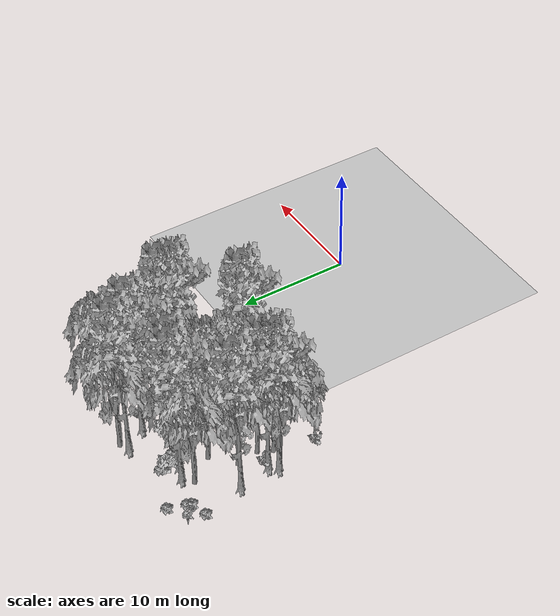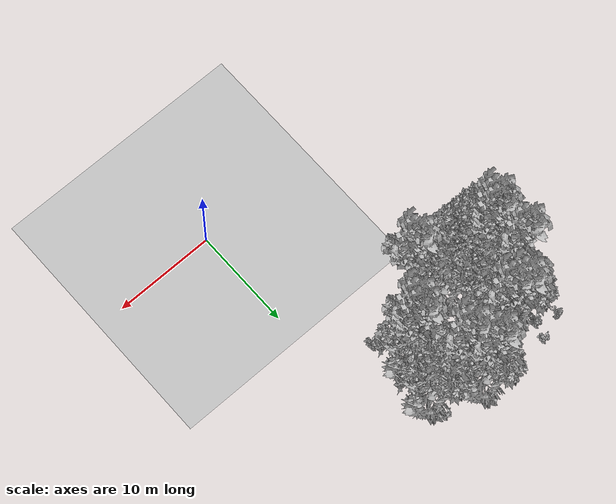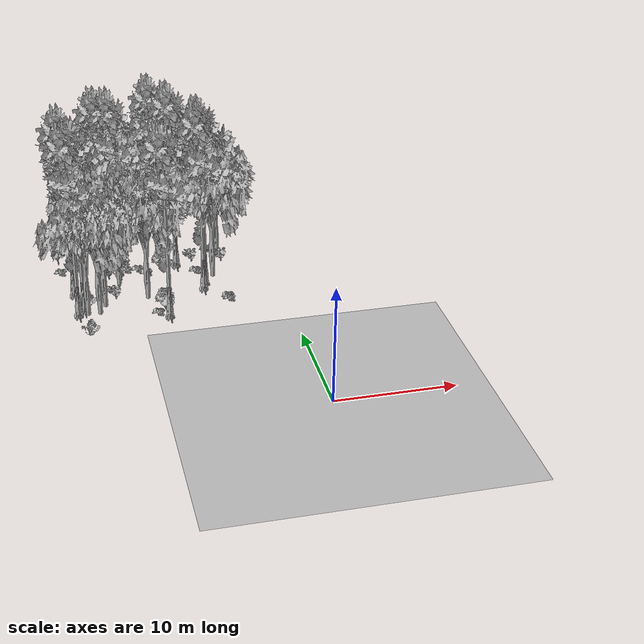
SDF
<sdf version="1.7">
 <world name="default">
  <model name="ground_plane">
   <static>1</static>
   <link name="link">
    <collision name="collision">
     <pose>-50 0 0 0 -0 0</pose>
     <geometry><plane><normal>0 0 1</normal><size>80 80</size></plane></geometry>
     <surface><contact><ode><min_depth>0.01</min_depth><max_vel>0</max_vel></ode></contact></surface>
    </collision>
    <visual name="grass">
     <cast_shadows>0</cast_shadows>
     <geometry>
      <mesh>
       <scale>0.46714285714285714 0.46714285714285714 0.1</scale>
       <uri>file://grass_plane/meshes/grass_plane.dae</uri>
      </mesh>
     </geometry>
    </visual>
   </link>
  </model>
  <model name="Tree 15">
   <static>1</static>
   <pose>-8.292715532854295 24.661213749309667 0 1.57079 -0 0</pose>
   <link name="link">
    <collision name="collision">
     <geometry><mesh><scale>3.5 5 3.5</scale><uri>model://tree_9/meshes/tree_9.obj</uri></mesh></geometry>
    </collision>
    <visual name="visual">
     <geometry><mesh><scale>3.5 5 3.5</scale><uri>model://tree_9/meshes/tree_9.obj</uri></mesh></geometry>
    </visual>
   </link>
  </model>
  <model name="Tree 109">
   <static>1</static>
   <pose>-6.550830692760805 19.89360490231479 0 1.57079 -0 0</pose>
   <link name="link">
    <collision name="collision">
     <geometry><mesh><scale>3.5 5 3.5</scale><uri>model://tree_9/meshes/tree_9.obj</uri></mesh></geometry>
    </collision>
    <visual name="visual">
     <geometry><mesh><scale>3.5 5 3.5</scale><uri>model://tree_9/meshes/tree_9.obj</uri></mesh></geometry>
    </visual>
   </link>
  </model>
  <model name="Tree 110">
   <static>1</static>
   <pose>-17.126012770613343 17.023054667490698 0 1.57079 -0 0</pose>
   <link name="link">
    <collision name="collision">
     <geometry><mesh><scale>3.5 5 3.5</scale><uri>model://tree_2/meshes/tree_2.obj</uri></mesh></geometry>
    </collision>
    <visual name="visual">
     <geometry><mesh><scale>3.5 5 3.5</scale><uri>model://tree_2/meshes/tree_2.obj</uri></mesh></geometry>
    </visual>
   </link>
  </model>
  <model name="Tree 140">
   <static>1</static>
   <pose>-13.554730115266054 24.142331529413667 0 1.57079 -0 0</pose>
   <link name="link">
    <collision name="collision">
     <geometry><mesh><scale>3.5 5 3.5</scale><uri>model://tree_9/meshes/tree_9.obj</uri></mesh></geometry>
    </collision>
    <visual name="visual">
     <geometry><mesh><scale>3.5 5 3.5</scale><uri>model://tree_9/meshes/tree_9.obj</uri></mesh></geometry>
    </visual>
   </link>
  </model>
  <model name="Tree 143">
   <static>1</static>
   <pose>-10.212726416079686 15.782468185717207 0 1.57079 -0 0</pose>
   <link name="link">
    <collision name="collision">
     <geometry><mesh><scale>3.5 5 3.5</scale><uri>model://tree_9/meshes/tree_9.obj</uri></mesh></geometry>
    </collision>
    <visual name="visual">
     <geometry><mesh><scale>3.5 5 3.5</scale><uri>model://tree_9/meshes/tree_9.obj</uri></mesh></geometry>
    </visual>
   </link>
  </model>
  <model name="Tree 144">
   <static>1</static>
   <pose>-14.624975446077059 24.576041392068035 0 1.57079 -0 0</pose>
   <link name="link">
    <collision name="collision">
     <geometry><mesh><scale>3.5 5 3.5</scale><uri>model://tree_9/meshes/tree_9.obj</uri></mesh></geometry>
    </collision>
    <visual name="visual">
     <geometry><mesh><scale>3.5 5 3.5</scale><uri>model://tree_9/meshes/tree_9.obj</uri></mesh></geometry>
    </visual>
   </link>
  </model>
  <model name="Tree 209">
   <static>1</static>
   <pose>-9.653871599289953 26.584820122343316 0 1.57079 -0 0</pose>
   <link name="link">
    <collision name="collision">
     <geometry><mesh><scale>3.5 5 3.5</scale><uri>model://tree_9/meshes/tree_9.obj</uri></mesh></geometry>
    </collision>
    <visual name="visual">
     <geometry><mesh><scale>3.5 5 3.5</scale><uri>model://tree_9/meshes/tree_9.obj</uri></mesh></geometry>
    </visual>
   </link>
  </model>
  <model name="Tree 241">
   <static>1</static>
   <pose>-6.267327057480081 20.74024753474704 0 1.57079 -0 0</pose>
   <link name="link">
    <collision name="collision">
     <geometry><mesh><scale>3.5 5 3.5</scale><uri>model://tree_9/meshes/tree_9.obj</uri></mesh></geometry>
    </collision>
    <visual name="visual">
     <geometry><mesh><scale>3.5 5 3.5</scale><uri>model://tree_9/meshes/tree_9.obj</uri></mesh></geometry>
    </visual>
   </link>
  </model>
  <model name="Tree 269">
   <static>1</static>
   <pose>-11.763452044475557 18.74192902436748 0 1.57079 -0 0</pose>
   <link name="link">
    <collision name="collision">
     <geometry><mesh><scale>3.5 5 3.5</scale><uri>model://tree_2/meshes/tree_2.obj</uri></mesh></geometry>
    </collision>
    <visual name="visual">
     <geometry><mesh><scale>3.5 5 3.5</scale><uri>model://tree_2/meshes/tree_2.obj</uri></mesh></geometry>
    </visual>
   </link>
  </model>
  <model name="Tree 325">
   <static>1</static>
   <pose>-5.541952828704893 21.414962444839823 0 1.57079 -0 0</pose>
   <link name="link">
    <collision name="collision">
     <geometry><mesh><scale>3.5 5 3.5</scale><uri>model://tree_2/meshes/tree_2.obj</uri></mesh></geometry>
    </collision>
    <visual name="visual">
     <geometry><mesh><scale>3.5 5 3.5</scale><uri>model://tree_2/meshes/tree_2.obj</uri></mesh></geometry>
    </visual>
   </link>
  </model>
  <model name="Tree 333">
   <static>1</static>
   <pose>-17.91380853144903 21.139049416569407 0 1.57079 -0 0</pose>
   <link name="link">
    <collision name="collision">
     <geometry><mesh><scale>3.5 5 3.5</scale><uri>model://tree_9/meshes/tree_9.obj</uri></mesh></geometry>
    </collision>
    <visual name="visual">
     <geometry><mesh><scale>3.5 5 3.5</scale><uri>model://tree_9/meshes/tree_9.obj</uri></mesh></geometry>
    </visual>
   </link>
  </model>
  <model name="Tree 339">
   <static>1</static>
   <pose>-15.801614452808987 20.040853027054347 0 1.57079 -0 0</pose>
   <link name="link">
    <collision name="collision">
     <geometry><mesh><scale>3.5 5 3.5</scale><uri>model://tree_2/meshes/tree_2.obj</uri></mesh></geometry>
    </collision>
    <visual name="visual">
     <geometry><mesh><scale>3.5 5 3.5</scale><uri>model://tree_2/meshes/tree_2.obj</uri></mesh></geometry>
    </visual>
   </link>
  </model>
  <model name="Tree 392">
   <static>1</static>
   <pose>-4.557685112494681 24.96248180956384 0 1.57079 -0 0</pose>
   <link name="link">
    <collision name="collision">
     <geometry><mesh><scale>3.5 5 3.5</scale><uri>model://tree_2/meshes/tree_2.obj</uri></mesh></geometry>
    </collision>
    <visual name="visual">
     <geometry><mesh><scale>3.5 5 3.5</scale><uri>model://tree_2/meshes/tree_2.obj</uri></mesh></geometry>
    </visual>
   </link>
  </model>
  <model name="Tree 420">
   <static>1</static>
   <pose>-15.603673739921529 23.887566090268713 0 1.57079 -0 0</pose>
   <link name="link">
    <collision name="collision">
     <geometry><mesh><scale>3.5 5 3.5</scale><uri>model://tree_2/meshes/tree_2.obj</uri></mesh></geometry>
    </collision>
    <visual name="visual">
     <geometry><mesh><scale>3.5 5 3.5</scale><uri>model://tree_2/meshes/tree_2.obj</uri></mesh></geometry>
    </visual>
   </link>
  </model>
  <model name="Tree 475">
   <static>1</static>
   <pose>-15.536670682869985 18.124727395134215 0 1.57079 -0 0</pose>
   <link name="link">
    <collision name="collision">
     <geometry><mesh><scale>3.5 5 3.5</scale><uri>model://tree_2/meshes/tree_2.obj</uri></mesh></geometry>
    </collision>
    <visual name="visual">
     <geometry><mesh><scale>3.5 5 3.5</scale><uri>model://tree_2/meshes/tree_2.obj</uri></mesh></geometry>
    </visual>
   </link>
  </model>
  <model name="Tree 492">
   <static>1</static>
   <pose>-16.11060564327417 16.95325655098054 0 1.57079 -0 0</pose>
   <link name="link">
    <collision name="collision">
     <geometry><mesh><scale>3.5 5 3.5</scale><uri>model://tree_2/meshes/tree_2.obj</uri></mesh></geometry>
    </collision>
    <visual name="visual">
     <geometry><mesh><scale>3.5 5 3.5</scale><uri>model://tree_2/meshes/tree_2.obj</uri></mesh></geometry>
    </visual>
   </link>
  </model>
  <model name="Tree 537">
   <static>1</static>
   <pose>-8.99832951207204 26.98607690563385 0 1.57079 -0 0</pose>
   <link name="link">
    <collision name="collision">
     <geometry><mesh><scale>3.5 5 3.5</scale><uri>model://tree_2/meshes/tree_2.obj</uri></mesh></geometry>
    </collision>
    <visual name="visual">
     <geometry><mesh><scale>3.5 5 3.5</scale><uri>model://tree_2/meshes/tree_2.obj</uri></mesh></geometry>
    </visual>
   </link>
  </model>
  <model name="Tree 561">
   <static>1</static>
   <pose>-13.93694100472192 21.71370582622295 0 1.57079 -0 0</pose>
   <link name="link">
    <collision name="collision">
     <geometry><mesh><scale>3.5 5 3.5</scale><uri>model://tree_2/meshes/tree_2.obj</uri></mesh></geometry>
    </collision>
    <visual name="visual">
     <geometry><mesh><scale>3.5 5 3.5</scale><uri>model://tree_2/meshes/tree_2.obj</uri></mesh></geometry>
    </visual>
   </link>
  </model>
  <model name="Tree 574">
   <static>1</static>
   <pose>-17.30329897056695 18.240573681545165 0 1.57079 -0 0</pose>
   <link name="link">
    <collision name="collision">
     <geometry><mesh><scale>3.5 5 3.5</scale><uri>model://tree_9/meshes/tree_9.obj</uri></mesh></geometry>
    </collision>
    <visual name="visual">
     <geometry><mesh><scale>3.5 5 3.5</scale><uri>model://tree_9/meshes/tree_9.obj</uri></mesh></geometry>
    </visual>
   </link>
  </model>
  <model name="Tree 625">
   <static>1</static>
   <pose>-17.844764542287244 17.59301895564613 0 1.57079 -0 0</pose>
   <link name="link">
    <collision name="collision">
     <geometry><mesh><scale>3.5 5 3.5</scale><uri>model://tree_9/meshes/tree_9.obj</uri></mesh></geometry>
    </collision>
    <visual name="visual">
     <geometry><mesh><scale>3.5 5 3.5</scale><uri>model://tree_9/meshes/tree_9.obj</uri></mesh></geometry>
    </visual>
   </link>
  </model>
  <model name="Bush 56">
   <static>1</static>
   <pose>-10.45311648723494 16.46314151840628 0 1.57079 -0 0</pose>
   <link name="link">
    <collision name="collision">
     <geometry><mesh><scale>2 2 2</scale><uri>model://bush_1/meshes/bush_1.obj</uri></mesh></geometry>
     <surface><contact><collide_without_contact>false</collide_without_contact></contact></surface>
    </collision>
    <visual name="visual">
     <geometry><mesh><scale>2 2 2</scale><uri>model://bush_1/meshes/bush_1.obj</uri></mesh></geometry>
    </visual>
   </link>
  </model>
  <model name="Bush 110">
   <static>1</static>
   <pose>-5.250466016496787 26.44896665482176 0 1.57079 -0 0</pose>
   <link name="link">
    <collision name="collision">
     <geometry><mesh><scale>2 2 2</scale><uri>model://bush_2/meshes/bush_2.obj</uri></mesh></geometry>
     <surface><contact><collide_without_contact>false</collide_without_contact></contact></surface>
    </collision>
    <visual name="visual">
     <geometry><mesh><scale>2 2 2</scale><uri>model://bush_2/meshes/bush_2.obj</uri></mesh></geometry>
    </visual>
   </link>
  </model>
  <model name="Bush 114">
   <static>1</static>
   <pose>-4.769407034909683 17.091894299656758 0 1.57079 -0 0</pose>
   <link name="link">
    <collision name="collision">
     <geometry><mesh><scale>2 2 2</scale><uri>model://bush_2/meshes/bush_2.obj</uri></mesh></geometry>
     <surface><contact><collide_without_contact>false</collide_without_contact></contact></surface>
    </collision>
    <visual name="visual">
     <geometry><mesh><scale>2 2 2</scale><uri>model://bush_2/meshes/bush_2.obj</uri></mesh></geometry>
    </visual>
   </link>
  </model>
  <model name="Bush 132">
   <static>1</static>
   <pose>-17.34318724251351 25.151773113928385 0 1.57079 -0 0</pose>
   <link name="link">
    <collision name="collision">
     <geometry><mesh><scale>2 2 2</scale><uri>model://bush_2/meshes/bush_2.obj</uri></mesh></geometry>
     <surface><contact><collide_without_contact>false</collide_without_contact></contact></surface>
    </collision>
    <visual name="visual">
     <geometry><mesh><scale>2 2 2</scale><uri>model://bush_2/meshes/bush_2.obj</uri></mesh></geometry>
    </visual>
   </link>
  </model>
  <model name="Bush 139">
   <static>1</static>
   <pose>-9.810401265471661 23.386548524037153 0 1.57079 -0 0</pose>
   <link name="link">
    <collision name="collision">
     <geometry><mesh><scale>2 2 2</scale><uri>model://bush_1/meshes/bush_1.obj</uri></mesh></geometry>
     <surface><contact><collide_without_contact>false</collide_without_contact></contact></surface>
    </collision>
    <visual name="visual">
     <geometry><mesh><scale>2 2 2</scale><uri>model://bush_1/meshes/bush_1.obj</uri></mesh></geometry>
    </visual>
   </link>
  </model>
  <model name="Bush 201">
   <static>1</static>
   <pose>-4.819874008255255 17.477037897902754 0 1.57079 -0 0</pose>
   <link name="link">
    <collision name="collision">
     <geometry><mesh><scale>2 2 2</scale><uri>model://bush_2/meshes/bush_2.obj</uri></mesh></geometry>
     <surface><contact><collide_without_contact>false</collide_without_contact></contact></surface>
    </collision>
    <visual name="visual">
     <geometry><mesh><scale>2 2 2</scale><uri>model://bush_2/meshes/bush_2.obj</uri></mesh></geometry>
    </visual>
   </link>
  </model>
  <model name="Bush 208">
   <static>1</static>
   <pose>-6.863589050270065 22.611940298627864 0 1.57079 -0 0</pose>
   <link name="link">
    <collision name="collision">
     <geometry><mesh><scale>2 2 2</scale><uri>model://bush_2/meshes/bush_2.obj</uri></mesh></geometry>
     <surface><contact><collide_without_contact>false</collide_without_contact></contact></surface>
    </collision>
    <visual name="visual">
     <geometry><mesh><scale>2 2 2</scale><uri>model://bush_2/meshes/bush_2.obj</uri></mesh></geometry>
    </visual>
   </link>
  </model>
  <model name="Bush 276">
   <static>1</static>
   <pose>-13.553777915610826 24.23097641397176 0 1.57079 -0 0</pose>
   <link name="link">
    <collision name="collision">
     <geometry><mesh><scale>2 2 2</scale><uri>model://bush_5/meshes/bush_5.obj</uri></mesh></geometry>
     <surface><contact><collide_without_contact>false</collide_without_contact></contact></surface>
    </collision>
    <visual name="visual">
     <geometry><mesh><scale>2 2 2</scale><uri>model://bush_5/meshes/bush_5.obj</uri></mesh></geometry>
    </visual>
   </link>
  </model>
  <model name="Bush 285">
   <static>1</static>
   <pose>-14.429352782253009 19.174948931297365 0 1.57079 -0 0</pose>
   <link name="link">
    <collision name="collision">
     <geometry><mesh><scale>2 2 2</scale><uri>model://bush_0/meshes/bush_0.obj</uri></mesh></geometry>
     <surface><contact><collide_without_contact>false</collide_without_contact></contact></surface>
    </collision>
    <visual name="visual">
     <geometry><mesh><scale>2 2 2</scale><uri>model://bush_0/meshes/bush_0.obj</uri></mesh></geometry>
    </visual>
   </link>
  </model>
  <model name="Bush 287">
   <static>1</static>
   <pose>-18.832573151570323 26.404877636828047 0 1.57079 -0 0</pose>
   <link name="link">
    <collision name="collision">
     <geometry><mesh><scale>2 2 2</scale><uri>model://bush_5/meshes/bush_5.obj</uri></mesh></geometry>
     <surface><contact><collide_without_contact>false</collide_without_contact></contact></surface>
    </collision>
    <visual name="visual">
     <geometry><mesh><scale>2 2 2</scale><uri>model://bush_5/meshes/bush_5.obj</uri></mesh></geometry>
    </visual>
   </link>
  </model>
  <model name="Bush 295">
   <static>1</static>
   <pose>-17.159869461648885 13.669016456538401 0 1.57079 -0 0</pose>
   <link name="link">
    <collision name="collision">
     <geometry><mesh><scale>2 2 2</scale><uri>model://bush_4/meshes/bush_4.obj</uri></mesh></geometry>
     <surface><contact><collide_without_contact>false</collide_without_contact></contact></surface>
    </collision>
    <visual name="visual">
     <geometry><mesh><scale>2 2 2</scale><uri>model://bush_4/meshes/bush_4.obj</uri></mesh></geometry>
    </visual>
   </link>
  </model>
  <model name="Bush 309">
   <static>1</static>
   <pose>-16.710891992001798 27.003185246464824 0 1.57079 -0 0</pose>
   <link name="link">
    <collision name="collision">
     <geometry><mesh><scale>2 2 2</scale><uri>model://bush_2/meshes/bush_2.obj</uri></mesh></geometry>
     <surface><contact><collide_without_contact>false</collide_without_contact></contact></surface>
    </collision>
    <visual name="visual">
     <geometry><mesh><scale>2 2 2</scale><uri>model://bush_2/meshes/bush_2.obj</uri></mesh></geometry>
    </visual>
   </link>
  </model>
  <model name="Bush 333">
   <static>1</static>
   <pose>-11.157487376684116 15.991143916208436 0 1.57079 -0 0</pose>
   <link name="link">
    <collision name="collision">
     <geometry><mesh><scale>2 2 2</scale><uri>model://bush_2/meshes/bush_2.obj</uri></mesh></geometry>
     <surface><contact><collide_without_contact>false</collide_without_contact></contact></surface>
    </collision>
    <visual name="visual">
     <geometry><mesh><scale>2 2 2</scale><uri>model://bush_2/meshes/bush_2.obj</uri></mesh></geometry>
    </visual>
   </link>
  </model>
  <model name="Bush 359">
   <static>1</static>
   <pose>-18.805905551720468 24.738410259780053 0 1.57079 -0 0</pose>
   <link name="link">
    <collision name="collision">
     <geometry><mesh><scale>2 2 2</scale><uri>model://bush_2/meshes/bush_2.obj</uri></mesh></geometry>
     <surface><contact><collide_without_contact>false</collide_without_contact></contact></surface>
    </collision>
    <visual name="visual">
     <geometry><mesh><scale>2 2 2</scale><uri>model://bush_2/meshes/bush_2.obj</uri></mesh></geometry>
    </visual>
   </link>
  </model>
  <model name="Bush 365">
   <static>1</static>
   <pose>-12.975958958570196 25.54135009341492 0 1.57079 -0 0</pose>
   <link name="link">
    <collision name="collision">
     <geometry><mesh><scale>2 2 2</scale><uri>model://bush_2/meshes/bush_2.obj</uri></mesh></geometry>
     <surface><contact><collide_without_contact>false</collide_without_contact></contact></surface>
    </collision>
    <visual name="visual">
     <geometry><mesh><scale>2 2 2</scale><uri>model://bush_2/meshes/bush_2.obj</uri></mesh></geometry>
    </visual>
   </link>
  </model>
  <model name="Bush 386">
   <static>1</static>
   <pose>-4.246459334883816 23.97975263408763 0 1.57079 -0 0</pose>
   <link name="link">
    <collision name="collision">
     <geometry><mesh><scale>2 2 2</scale><uri>model://bush_0/meshes/bush_0.obj</uri></mesh></geometry>
     <surface><contact><collide_without_contact>false</collide_without_contact></contact></surface>
    </collision>
    <visual name="visual">
     <geometry><mesh><scale>2 2 2</scale><uri>model://bush_0/meshes/bush_0.obj</uri></mesh></geometry>
    </visual>
   </link>
  </model>
  <model name="Bush 425">
   <static>1</static>
   <pose>-10.203045280438658 19.335678344418803 0 1.57079 -0 0</pose>
   <link name="link">
    <collision name="collision">
     <geometry><mesh><scale>2 2 2</scale><uri>model://bush_2/meshes/bush_2.obj</uri></mesh></geometry>
     <surface><contact><collide_without_contact>false</collide_without_contact></contact></surface>
    </collision>
    <visual name="visual">
     <geometry><mesh><scale>2 2 2</scale><uri>model://bush_2/meshes/bush_2.obj</uri></mesh></geometry>
    </visual>
   </link>
  </model>
  <model name="Bush 470">
   <static>1</static>
   <pose>-11.947918583031203 23.92483865286067 0 1.57079 -0 0</pose>
   <link name="link">
    <collision name="collision">
     <geometry><mesh><scale>2 2 2</scale><uri>model://bush_2/meshes/bush_2.obj</uri></mesh></geometry>
     <surface><contact><collide_without_contact>false</collide_without_contact></contact></surface>
    </collision>
    <visual name="visual">
     <geometry><mesh><scale>2 2 2</scale><uri>model://bush_2/meshes/bush_2.obj</uri></mesh></geometry>
    </visual>
   </link>
  </model>
  <model name="Bush 474">
   <static>1</static>
   <pose>-16.933180353200314 18.33690715088578 0 1.57079 -0 0</pose>
   <link name="link">
    <collision name="collision">
     <geometry><mesh><scale>2 2 2</scale><uri>model://bush_4/meshes/bush_4.obj</uri></mesh></geometry>
     <surface><contact><collide_without_contact>false</collide_without_contact></contact></surface>
    </collision>
    <visual name="visual">
     <geometry><mesh><scale>2 2 2</scale><uri>model://bush_4/meshes/bush_4.obj</uri></mesh></geometry>
    </visual>
   </link>
  </model>
  <model name="Bush 488">
   <static>1</static>
   <pose>-6.931240883529114 24.427122811206033 0 1.57079 -0 0</pose>
   <link name="link">
    <collision name="collision">
     <geometry><mesh><scale>2 2 2</scale><uri>model://bush_0/meshes/bush_0.obj</uri></mesh></geometry>
     <surface><contact><collide_without_contact>false</collide_without_contact></contact></surface>
    </collision>
    <visual name="visual">
     <geometry><mesh><scale>2 2 2</scale><uri>model://bush_0/meshes/bush_0.obj</uri></mesh></geometry>
    </visual>
   </link>
  </model>
  <model name="Bush 506">
   <static>1</static>
   <pose>-11.233811218536594 23.129306792441625 0 1.57079 -0 0</pose>
   <link name="link">
    <collision name="collision">
     <geometry><mesh><scale>2 2 2</scale><uri>model://bush_2/meshes/bush_2.obj</uri></mesh></geometry>
     <surface><contact><collide_without_contact>false</collide_without_contact></contact></surface>
    </collision>
    <visual name="visual">
     <geometry><mesh><scale>2 2 2</scale><uri>model://bush_2/meshes/bush_2.obj</uri></mesh></geometry>
    </visual>
   </link>
  </model>
  <model name="Bush 509">
   <static>1</static>
   <pose>-17.201832147723653 25.50351380268748 0 1.57079 -0 0</pose>
   <link name="link">
    <collision name="collision">
     <geometry><mesh><scale>2 2 2</scale><uri>model://bush_2/meshes/bush_2.obj</uri></mesh></geometry>
     <surface><contact><collide_without_contact>false</collide_without_contact></contact></surface>
    </collision>
    <visual name="visual">
     <geometry><mesh><scale>2 2 2</scale><uri>model://bush_2/meshes/bush_2.obj</uri></mesh></geometry>
    </visual>
   </link>
  </model>
  <model name="Bush 541">
   <static>1</static>
   <pose>-9.23702650535379 22.646029791041755 0 1.57079 -0 0</pose>
   <link name="link">
    <collision name="collision">
     <geometry><mesh><scale>2 2 2</scale><uri>model://bush_5/meshes/bush_5.obj</uri></mesh></geometry>
     <surface><contact><collide_without_contact>false</collide_without_contact></contact></surface>
    </collision>
    <visual name="visual">
     <geometry><mesh><scale>2 2 2</scale><uri>model://bush_5/meshes/bush_5.obj</uri></mesh></geometry>
    </visual>
   </link>
  </model>
  <model name="Bush 562">
   <static>1</static>
   <pose>-13.00835534089817 23.99763657646139 0 1.57079 -0 0</pose>
   <link name="link">
    <collision name="collision">
     <geometry><mesh><scale>2 2 2</scale><uri>model://bush_2/meshes/bush_2.obj</uri></mesh></geometry>
     <surface><contact><collide_without_contact>false</collide_without_contact></contact></surface>
    </collision>
    <visual name="visual">
     <geometry><mesh><scale>2 2 2</scale><uri>model://bush_2/meshes/bush_2.obj</uri></mesh></geometry>
    </visual>
   </link>
  </model>
  <model name="Bush 615">
   <static>1</static>
   <pose>-13.330294531305732 24.955492722048675 0 1.57079 -0 0</pose>
   <link name="link">
    <collision name="collision">
     <geometry><mesh><scale>2 2 2</scale><uri>model://bush_1/meshes/bush_1.obj</uri></mesh></geometry>
     <surface><contact><collide_without_contact>false</collide_without_contact></contact></surface>
    </collision>
    <visual name="visual">
     <geometry><mesh><scale>2 2 2</scale><uri>model://bush_1/meshes/bush_1.obj</uri></mesh></geometry>
    </visual>
   </link>
  </model>
 </world>
</sdf>
